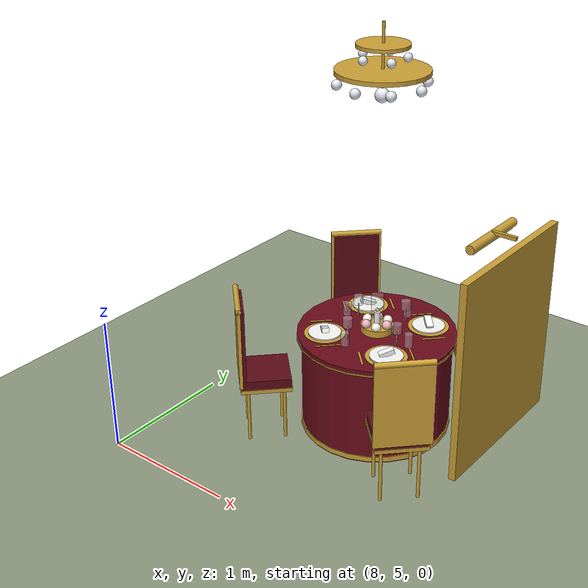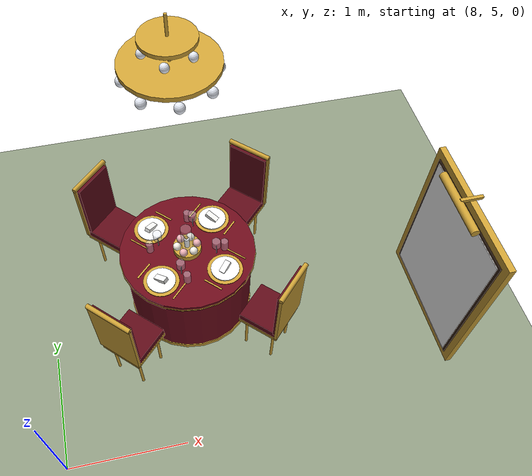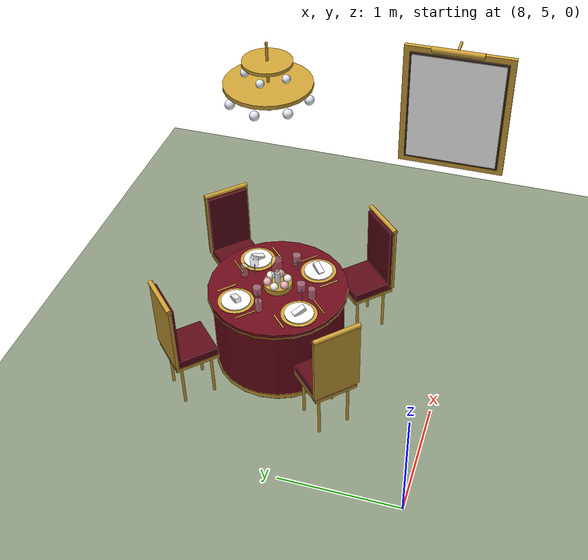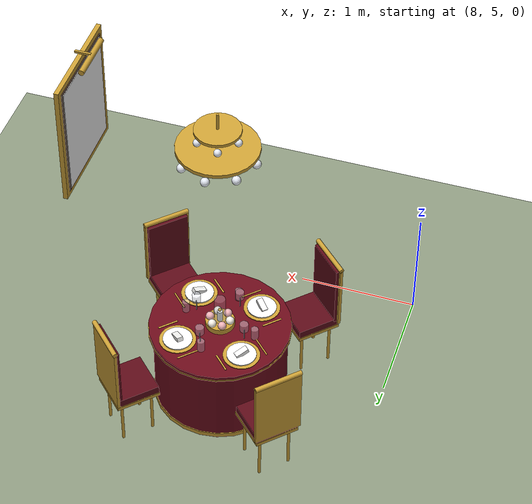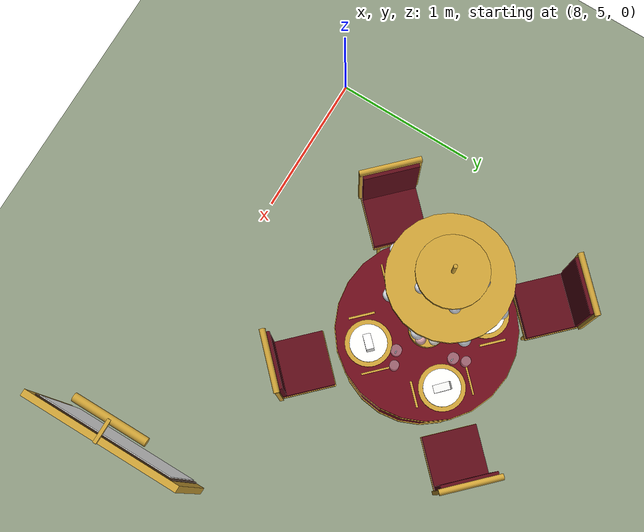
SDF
<sdf version="1.9">
 <world name="dar_tunibot">
  <model name="ground_plane">
   <static>true</static>
   <link name="link">
    <collision name="collision">
     <geometry><plane><normal>0 0 1</normal><size>60 60</size></plane></geometry>
    </collision>
    <visual name="visual">
     <geometry><plane><normal>0 0 1</normal><size>60 60</size></plane></geometry>
     <material><ambient>0.55 0.6 0.5 1</ambient><diffuse>0.55 0.6 0.5 1</diffuse></material>
    </visual>
   </link>
  </model>
  <model name="vip_1">
   <static>true</static>
   <pose>9.3 6.4 0 0 0 0</pose>
   <link name="link">
    <visual name="cloth_v">
     <pose>0.000 0.000 0.370 0.0000 0.0000 0.0000</pose>
     <geometry><cylinder><radius>0.550</radius><length>0.740</length></cylinder></geometry>
     <material>
      <ambient>0.42 0.04 0.1 1</ambient>
      <diffuse>0.42 0.04 0.1 1</diffuse>
      <specular>0.1 0.1 0.1 1</specular>
     </material>
    </visual>
    <collision name="cloth_c">
     <pose>0.000 0.000 0.370 0.0000 0.0000 0.0000</pose>
     <geometry><cylinder><radius>0.550</radius><length>0.740</length></cylinder></geometry>
    </collision>
    <visual name="drape_v">
     <pose>0.000 0.000 0.750 0.0000 0.0000 0.0000</pose>
     <geometry><cylinder><radius>0.580</radius><length>0.040</length></cylinder></geometry>
     <material>
      <ambient>0.42 0.04 0.1 1</ambient>
      <diffuse>0.42 0.04 0.1 1</diffuse>
      <specular>0.1 0.1 0.1 1</specular>
     </material>
    </visual>
    <visual name="hem_trim_v">
     <pose>0.000 0.000 0.030 0.0000 0.0000 0.0000</pose>
     <geometry><cylinder><radius>0.557</radius><length>0.040</length></cylinder></geometry>
     <material>
      <ambient>0.8 0.63 0.21 1</ambient>
      <diffuse>0.8 0.63 0.21 1</diffuse>
      <specular>0.1 0.1 0.1 1</specular>
     </material>
    </visual>
    <visual name="edge_trim_v">
     <pose>0.000 0.000 0.735 0.0000 0.0000 0.0000</pose>
     <geometry><cylinder><radius>0.585</radius><length>0.012</length></cylinder></geometry>
     <material>
      <ambient>0.8 0.63 0.21 1</ambient>
      <diffuse>0.8 0.63 0.21 1</diffuse>
      <specular>0.1 0.1 0.1 1</specular>
     </material>
    </visual>
    <visual name="bowl_v">
     <pose>0.000 0.000 0.795 0.0000 0.0000 0.0000</pose>
     <geometry><cylinder><radius>0.120</radius><length>0.050</length></cylinder></geometry>
     <material>
      <ambient>0.8 0.63 0.21 1</ambient>
      <diffuse>0.8 0.63 0.21 1</diffuse>
      <specular>0.1 0.1 0.1 1</specular>
     </material>
    </visual>
    <visual name="bowl_foot_v">
     <pose>0.000 0.000 0.775 0.0000 0.0000 0.0000</pose>
     <geometry><cylinder><radius>0.060</radius><length>0.020</length></cylinder></geometry>
     <material>
      <ambient>0.8 0.63 0.21 1</ambient>
      <diffuse>0.8 0.63 0.21 1</diffuse>
      <specular>0.1 0.1 0.1 1</specular>
     </material>
    </visual>
    <visual name="candle_v">
     <pose>0.000 0.000 0.870 0.0000 0.0000 0.0000</pose>
     <geometry><cylinder><radius>0.022</radius><length>0.100</length></cylinder></geometry>
     <material>
      <ambient>0.98 0.98 0.97 1</ambient>
      <diffuse>0.98 0.98 0.97 1</diffuse>
      <specular>0.1 0.1 0.1 1</specular>
     </material>
    </visual>
    <visual name="flame_v">
     <pose>0.000 0.000 0.935 0.0000 0.0000 0.0000</pose>
     <geometry><sphere><radius>0.014</radius></sphere></geometry>
     <material>
      <ambient>0.8 0.63 0.21 1</ambient>
      <diffuse>0.8 0.63 0.21 1</diffuse>
      <specular>0.1 0.1 0.1 1</specular>
      <emissive>1.0 0.6 0.2 1</emissive>
     </material>
    </visual>
    <visual name="hurricane_v">
     <pose>0.000 0.000 0.940 0.0000 0.0000 0.0000</pose>
     <geometry><cylinder><radius>0.045</radius><length>0.240</length></cylinder></geometry>
     <transparency>0.75</transparency>
     <material>
      <ambient>0.9 0.92 0.96 1</ambient>
      <diffuse>0.9 0.92 0.96 1</diffuse>
      <specular>0.1 0.1 0.1 1</specular>
     </material>
    </visual>
    <visual name="rose0_v">
     <pose>0.085 0.000 0.835 0.0000 0.0000 0.0000</pose>
     <geometry><sphere><radius>0.035</radius></sphere></geometry>
     <material>
      <ambient>0.93 0.7 0.72 1</ambient>
      <diffuse>0.93 0.7 0.72 1</diffuse>
      <specular>0.1 0.1 0.1 1</specular>
     </material>
    </visual>
    <visual name="rose1_v">
     <pose>0.043 0.074 0.835 0.0000 0.0000 0.0000</pose>
     <geometry><sphere><radius>0.035</radius></sphere></geometry>
     <material>
      <ambient>0.97 0.95 0.91 1</ambient>
      <diffuse>0.97 0.95 0.91 1</diffuse>
      <specular>0.1 0.1 0.1 1</specular>
     </material>
    </visual>
    <visual name="rose2_v">
     <pose>-0.042 0.074 0.835 0.0000 0.0000 0.0000</pose>
     <geometry><sphere><radius>0.035</radius></sphere></geometry>
     <material>
      <ambient>0.93 0.7 0.72 1</ambient>
      <diffuse>0.93 0.7 0.72 1</diffuse>
      <specular>0.1 0.1 0.1 1</specular>
     </material>
    </visual>
    <visual name="rose3_v">
     <pose>-0.085 0.000 0.835 0.0000 0.0000 0.0000</pose>
     <geometry><sphere><radius>0.035</radius></sphere></geometry>
     <material>
      <ambient>0.97 0.95 0.91 1</ambient>
      <diffuse>0.97 0.95 0.91 1</diffuse>
      <specular>0.1 0.1 0.1 1</specular>
     </material>
    </visual>
    <visual name="rose4_v">
     <pose>-0.043 -0.074 0.835 0.0000 0.0000 0.0000</pose>
     <geometry><sphere><radius>0.035</radius></sphere></geometry>
     <material>
      <ambient>0.93 0.7 0.72 1</ambient>
      <diffuse>0.93 0.7 0.72 1</diffuse>
      <specular>0.1 0.1 0.1 1</specular>
     </material>
    </visual>
    <visual name="rose5_v">
     <pose>0.043 -0.074 0.835 0.0000 0.0000 0.0000</pose>
     <geometry><sphere><radius>0.035</radius></sphere></geometry>
     <material>
      <ambient>0.97 0.95 0.91 1</ambient>
      <diffuse>0.97 0.95 0.91 1</diffuse>
      <specular>0.1 0.1 0.1 1</specular>
     </material>
    </visual>
    <collision name="seat0_c">
     <pose>0.580 0.580 0.225 0.0000 0.0000 0.0000</pose>
     <geometry><box><size>0.400 0.400 0.450</size></box></geometry>
    </collision>
    <visual name="seat_frame0_v">
     <pose>0.580 0.580 0.430 0.0000 0.0000 0.7854</pose>
     <geometry><box><size>0.370 0.370 0.030</size></box></geometry>
     <material>
      <ambient>0.8 0.63 0.21 1</ambient>
      <diffuse>0.8 0.63 0.21 1</diffuse>
      <specular>0.1 0.1 0.1 1</specular>
     </material>
    </visual>
    <visual name="cushion0_v">
     <pose>0.580 0.580 0.480 0.0000 0.0000 0.7854</pose>
     <geometry><box><size>0.360 0.360 0.070</size></box></geometry>
     <material>
      <ambient>0.36 0.04 0.09 1</ambient>
      <diffuse>0.36 0.04 0.09 1</diffuse>
      <specular>0.1 0.1 0.1 1</specular>
     </material>
    </visual>
    <visual name="back_frame0_v">
     <pose>0.707 0.707 0.780 0.0000 0.0000 0.7854</pose>
     <geometry><box><size>0.025 0.400 0.620</size></box></geometry>
     <material>
      <ambient>0.8 0.63 0.21 1</ambient>
      <diffuse>0.8 0.63 0.21 1</diffuse>
      <specular>0.1 0.1 0.1 1</specular>
     </material>
    </visual>
    <visual name="back0_v">
     <pose>0.697 0.697 0.780 0.0000 0.0000 0.7854</pose>
     <geometry><box><size>0.050 0.360 0.580</size></box></geometry>
     <material>
      <ambient>0.36 0.04 0.09 1</ambient>
      <diffuse>0.36 0.04 0.09 1</diffuse>
      <specular>0.1 0.1 0.1 1</specular>
     </material>
    </visual>
    <visual name="back_top0_v">
     <pose>0.707 0.707 1.090 1.5708 0.0000 0.7854</pose>
     <geometry><cylinder><radius>0.020</radius><length>0.400</length></cylinder></geometry>
     <material>
      <ambient>0.8 0.63 0.21 1</ambient>
      <diffuse>0.8 0.63 0.21 1</diffuse>
      <specular>0.1 0.1 0.1 1</specular>
     </material>
    </visual>
    <visual name="leg0_0_v">
     <pose>0.580 0.396 0.210 0.0000 0.0000 0.7854</pose>
     <geometry><cylinder><radius>0.012</radius><length>0.420</length></cylinder></geometry>
     <material>
      <ambient>0.8 0.63 0.21 1</ambient>
      <diffuse>0.8 0.63 0.21 1</diffuse>
      <specular>0.1 0.1 0.1 1</specular>
     </material>
    </visual>
    <visual name="leg0_1_v">
     <pose>0.396 0.580 0.210 0.0000 0.0000 0.7854</pose>
     <geometry><cylinder><radius>0.012</radius><length>0.420</length></cylinder></geometry>
     <material>
      <ambient>0.8 0.63 0.21 1</ambient>
      <diffuse>0.8 0.63 0.21 1</diffuse>
      <specular>0.1 0.1 0.1 1</specular>
     </material>
    </visual>
    <visual name="leg0_2_v">
     <pose>0.764 0.580 0.210 0.0000 0.0000 0.7854</pose>
     <geometry><cylinder><radius>0.012</radius><length>0.420</length></cylinder></geometry>
     <material>
      <ambient>0.8 0.63 0.21 1</ambient>
      <diffuse>0.8 0.63 0.21 1</diffuse>
      <specular>0.1 0.1 0.1 1</specular>
     </material>
    </visual>
    <visual name="leg0_3_v">
     <pose>0.580 0.764 0.210 0.0000 0.0000 0.7854</pose>
     <geometry><cylinder><radius>0.012</radius><length>0.420</length></cylinder></geometry>
     <material>
      <ambient>0.8 0.63 0.21 1</ambient>
      <diffuse>0.8 0.63 0.21 1</diffuse>
      <specular>0.1 0.1 0.1 1</specular>
     </material>
    </visual>
    <visual name="charger0_v">
     <pose>0.269 0.269 0.773 0.0000 0.0000 0.7854</pose>
     <geometry><cylinder><radius>0.150</radius><length>0.006</length></cylinder></geometry>
     <material>
      <ambient>0.8 0.63 0.21 1</ambient>
      <diffuse>0.8 0.63 0.21 1</diffuse>
      <specular>0.1 0.1 0.1 1</specular>
     </material>
    </visual>
    <visual name="plate0_v">
     <pose>0.269 0.269 0.781 0.0000 0.0000 0.7854</pose>
     <geometry><cylinder><radius>0.120</radius><length>0.010</length></cylinder></geometry>
     <material>
      <ambient>0.98 0.98 0.97 1</ambient>
      <diffuse>0.98 0.98 0.97 1</diffuse>
      <specular>0.1 0.1 0.1 1</specular>
     </material>
    </visual>
    <visual name="napkin0_v">
     <pose>0.269 0.269 0.803 0.3500 0.0000 0.7854</pose>
     <geometry><box><size>0.050 0.110 0.035</size></box></geometry>
     <material>
      <ambient>0.98 0.98 0.97 1</ambient>
      <diffuse>0.98 0.98 0.97 1</diffuse>
      <specular>0.1 0.1 0.1 1</specular>
     </material>
    </visual>
    <visual name="fork0_v">
     <pose>0.396 0.141 0.772 0.0000 0.0000 0.7854</pose>
     <geometry><box><size>0.170 0.014 0.004</size></box></geometry>
     <material>
      <ambient>0.8 0.63 0.21 1</ambient>
      <diffuse>0.8 0.63 0.21 1</diffuse>
      <specular>0.1 0.1 0.1 1</specular>
     </material>
    </visual>
    <visual name="knife0_v">
     <pose>0.141 0.396 0.772 0.0000 0.0000 0.7854</pose>
     <geometry><box><size>0.180 0.012 0.004</size></box></geometry>
     <material>
      <ambient>0.8 0.63 0.21 1</ambient>
      <diffuse>0.8 0.63 0.21 1</diffuse>
      <specular>0.1 0.1 0.1 1</specular>
     </material>
    </visual>
    <visual name="wine_stem0_v">
     <pose>0.092 0.233 0.820 0.0000 0.0000 0.7854</pose>
     <geometry><cylinder><radius>0.004</radius><length>0.100</length></cylinder></geometry>
     <material>
      <ambient>0.9 0.92 0.96 1</ambient>
      <diffuse>0.9 0.92 0.96 1</diffuse>
      <specular>0.1 0.1 0.1 1</specular>
     </material>
    </visual>
    <visual name="wine_bowl0_v">
     <pose>0.092 0.233 0.905 0.0000 0.0000 0.7854</pose>
     <geometry><cylinder><radius>0.035</radius><length>0.070</length></cylinder></geometry>
     <transparency>0.6</transparency>
     <material>
      <ambient>0.9 0.92 0.96 1</ambient>
      <diffuse>0.9 0.92 0.96 1</diffuse>
      <specular>0.1 0.1 0.1 1</specular>
     </material>
    </visual>
    <visual name="water0_v">
     <pose>0.057 0.311 0.820 0.0000 0.0000 0.7854</pose>
     <geometry><cylinder><radius>0.030</radius><length>0.100</length></cylinder></geometry>
     <transparency>0.6</transparency>
     <material>
      <ambient>0.9 0.92 0.96 1</ambient>
      <diffuse>0.9 0.92 0.96 1</diffuse>
      <specular>0.1 0.1 0.1 1</specular>
     </material>
    </visual>
    <collision name="seat1_c">
     <pose>-0.580 0.580 0.225 0.0000 0.0000 0.0000</pose>
     <geometry><box><size>0.400 0.400 0.450</size></box></geometry>
    </collision>
    <visual name="seat_frame1_v">
     <pose>-0.580 0.580 0.430 0.0000 0.0000 2.3562</pose>
     <geometry><box><size>0.370 0.370 0.030</size></box></geometry>
     <material>
      <ambient>0.8 0.63 0.21 1</ambient>
      <diffuse>0.8 0.63 0.21 1</diffuse>
      <specular>0.1 0.1 0.1 1</specular>
     </material>
    </visual>
    <visual name="cushion1_v">
     <pose>-0.580 0.580 0.480 0.0000 0.0000 2.3562</pose>
     <geometry><box><size>0.360 0.360 0.070</size></box></geometry>
     <material>
      <ambient>0.36 0.04 0.09 1</ambient>
      <diffuse>0.36 0.04 0.09 1</diffuse>
      <specular>0.1 0.1 0.1 1</specular>
     </material>
    </visual>
    <visual name="back_frame1_v">
     <pose>-0.707 0.707 0.780 0.0000 0.0000 2.3562</pose>
     <geometry><box><size>0.025 0.400 0.620</size></box></geometry>
     <material>
      <ambient>0.8 0.63 0.21 1</ambient>
      <diffuse>0.8 0.63 0.21 1</diffuse>
      <specular>0.1 0.1 0.1 1</specular>
     </material>
    </visual>
    <visual name="back1_v">
     <pose>-0.697 0.697 0.780 0.0000 0.0000 2.3562</pose>
     <geometry><box><size>0.050 0.360 0.580</size></box></geometry>
     <material>
      <ambient>0.36 0.04 0.09 1</ambient>
      <diffuse>0.36 0.04 0.09 1</diffuse>
      <specular>0.1 0.1 0.1 1</specular>
     </material>
    </visual>
    <visual name="back_top1_v">
     <pose>-0.707 0.707 1.090 1.5708 0.0000 2.3562</pose>
     <geometry><cylinder><radius>0.020</radius><length>0.400</length></cylinder></geometry>
     <material>
      <ambient>0.8 0.63 0.21 1</ambient>
      <diffuse>0.8 0.63 0.21 1</diffuse>
      <specular>0.1 0.1 0.1 1</specular>
     </material>
    </visual>
    <visual name="leg1_0_v">
     <pose>-0.396 0.580 0.210 0.0000 0.0000 2.3562</pose>
     <geometry><cylinder><radius>0.012</radius><length>0.420</length></cylinder></geometry>
     <material>
      <ambient>0.8 0.63 0.21 1</ambient>
      <diffuse>0.8 0.63 0.21 1</diffuse>
      <specular>0.1 0.1 0.1 1</specular>
     </material>
    </visual>
    <visual name="leg1_1_v">
     <pose>-0.580 0.396 0.210 0.0000 0.0000 2.3562</pose>
     <geometry><cylinder><radius>0.012</radius><length>0.420</length></cylinder></geometry>
     <material>
      <ambient>0.8 0.63 0.21 1</ambient>
      <diffuse>0.8 0.63 0.21 1</diffuse>
      <specular>0.1 0.1 0.1 1</specular>
     </material>
    </visual>
    <visual name="leg1_2_v">
     <pose>-0.580 0.764 0.210 0.0000 0.0000 2.3562</pose>
     <geometry><cylinder><radius>0.012</radius><length>0.420</length></cylinder></geometry>
     <material>
      <ambient>0.8 0.63 0.21 1</ambient>
      <diffuse>0.8 0.63 0.21 1</diffuse>
      <specular>0.1 0.1 0.1 1</specular>
     </material>
    </visual>
    <visual name="leg1_3_v">
     <pose>-0.764 0.580 0.210 0.0000 0.0000 2.3562</pose>
     <geometry><cylinder><radius>0.012</radius><length>0.420</length></cylinder></geometry>
     <material>
      <ambient>0.8 0.63 0.21 1</ambient>
      <diffuse>0.8 0.63 0.21 1</diffuse>
      <specular>0.1 0.1 0.1 1</specular>
     </material>
    </visual>
    <visual name="charger1_v">
     <pose>-0.269 0.269 0.773 0.0000 0.0000 2.3562</pose>
     <geometry><cylinder><radius>0.150</radius><length>0.006</length></cylinder></geometry>
     <material>
      <ambient>0.8 0.63 0.21 1</ambient>
      <diffuse>0.8 0.63 0.21 1</diffuse>
      <specular>0.1 0.1 0.1 1</specular>
     </material>
    </visual>
    <visual name="plate1_v">
     <pose>-0.269 0.269 0.781 0.0000 0.0000 2.3562</pose>
     <geometry><cylinder><radius>0.120</radius><length>0.010</length></cylinder></geometry>
     <material>
      <ambient>0.98 0.98 0.97 1</ambient>
      <diffuse>0.98 0.98 0.97 1</diffuse>
      <specular>0.1 0.1 0.1 1</specular>
     </material>
    </visual>
    <visual name="napkin1_v">
     <pose>-0.269 0.269 0.803 0.3500 0.0000 2.3562</pose>
     <geometry><box><size>0.050 0.110 0.035</size></box></geometry>
     <material>
      <ambient>0.98 0.98 0.97 1</ambient>
      <diffuse>0.98 0.98 0.97 1</diffuse>
      <specular>0.1 0.1 0.1 1</specular>
     </material>
    </visual>
    <visual name="fork1_v">
     <pose>-0.141 0.396 0.772 0.0000 0.0000 2.3562</pose>
     <geometry><box><size>0.170 0.014 0.004</size></box></geometry>
     <material>
      <ambient>0.8 0.63 0.21 1</ambient>
      <diffuse>0.8 0.63 0.21 1</diffuse>
      <specular>0.1 0.1 0.1 1</specular>
     </material>
    </visual>
    <visual name="knife1_v">
     <pose>-0.396 0.141 0.772 0.0000 0.0000 2.3562</pose>
     <geometry><box><size>0.180 0.012 0.004</size></box></geometry>
     <material>
      <ambient>0.8 0.63 0.21 1</ambient>
      <diffuse>0.8 0.63 0.21 1</diffuse>
      <specular>0.1 0.1 0.1 1</specular>
     </material>
    </visual>
    <visual name="wine_stem1_v">
     <pose>-0.233 0.092 0.820 0.0000 0.0000 2.3562</pose>
     <geometry><cylinder><radius>0.004</radius><length>0.100</length></cylinder></geometry>
     <material>
      <ambient>0.9 0.92 0.96 1</ambient>
      <diffuse>0.9 0.92 0.96 1</diffuse>
      <specular>0.1 0.1 0.1 1</specular>
     </material>
    </visual>
    <visual name="wine_bowl1_v">
     <pose>-0.233 0.092 0.905 0.0000 0.0000 2.3562</pose>
     <geometry><cylinder><radius>0.035</radius><length>0.070</length></cylinder></geometry>
     <transparency>0.6</transparency>
     <material>
      <ambient>0.9 0.92 0.96 1</ambient>
      <diffuse>0.9 0.92 0.96 1</diffuse>
      <specular>0.1 0.1 0.1 1</specular>
     </material>
    </visual>
    <visual name="water1_v">
     <pose>-0.311 0.057 0.820 0.0000 0.0000 2.3562</pose>
     <geometry><cylinder><radius>0.030</radius><length>0.100</length></cylinder></geometry>
     <transparency>0.6</transparency>
     <material>
      <ambient>0.9 0.92 0.96 1</ambient>
      <diffuse>0.9 0.92 0.96 1</diffuse>
      <specular>0.1 0.1 0.1 1</specular>
     </material>
    </visual>
    <collision name="seat2_c">
     <pose>-0.580 -0.580 0.225 0.0000 0.0000 0.0000</pose>
     <geometry><box><size>0.400 0.400 0.450</size></box></geometry>
    </collision>
    <visual name="seat_frame2_v">
     <pose>-0.580 -0.580 0.430 0.0000 0.0000 3.9270</pose>
     <geometry><box><size>0.370 0.370 0.030</size></box></geometry>
     <material>
      <ambient>0.8 0.63 0.21 1</ambient>
      <diffuse>0.8 0.63 0.21 1</diffuse>
      <specular>0.1 0.1 0.1 1</specular>
     </material>
    </visual>
    <visual name="cushion2_v">
     <pose>-0.580 -0.580 0.480 0.0000 0.0000 3.9270</pose>
     <geometry><box><size>0.360 0.360 0.070</size></box></geometry>
     <material>
      <ambient>0.36 0.04 0.09 1</ambient>
      <diffuse>0.36 0.04 0.09 1</diffuse>
      <specular>0.1 0.1 0.1 1</specular>
     </material>
    </visual>
    <visual name="back_frame2_v">
     <pose>-0.707 -0.707 0.780 0.0000 0.0000 3.9270</pose>
     <geometry><box><size>0.025 0.400 0.620</size></box></geometry>
     <material>
      <ambient>0.8 0.63 0.21 1</ambient>
      <diffuse>0.8 0.63 0.21 1</diffuse>
      <specular>0.1 0.1 0.1 1</specular>
     </material>
    </visual>
    <visual name="back2_v">
     <pose>-0.697 -0.697 0.780 0.0000 0.0000 3.9270</pose>
     <geometry><box><size>0.050 0.360 0.580</size></box></geometry>
     <material>
      <ambient>0.36 0.04 0.09 1</ambient>
      <diffuse>0.36 0.04 0.09 1</diffuse>
      <specular>0.1 0.1 0.1 1</specular>
     </material>
    </visual>
    <visual name="back_top2_v">
     <pose>-0.707 -0.707 1.090 1.5708 0.0000 3.9270</pose>
     <geometry><cylinder><radius>0.020</radius><length>0.400</length></cylinder></geometry>
     <material>
      <ambient>0.8 0.63 0.21 1</ambient>
      <diffuse>0.8 0.63 0.21 1</diffuse>
      <specular>0.1 0.1 0.1 1</specular>
     </material>
    </visual>
    <visual name="leg2_0_v">
     <pose>-0.580 -0.396 0.210 0.0000 0.0000 3.9270</pose>
     <geometry><cylinder><radius>0.012</radius><length>0.420</length></cylinder></geometry>
     <material>
      <ambient>0.8 0.63 0.21 1</ambient>
      <diffuse>0.8 0.63 0.21 1</diffuse>
      <specular>0.1 0.1 0.1 1</specular>
     </material>
    </visual>
    <visual name="leg2_1_v">
     <pose>-0.396 -0.580 0.210 0.0000 0.0000 3.9270</pose>
     <geometry><cylinder><radius>0.012</radius><length>0.420</length></cylinder></geometry>
     <material>
      <ambient>0.8 0.63 0.21 1</ambient>
      <diffuse>0.8 0.63 0.21 1</diffuse>
      <specular>0.1 0.1 0.1 1</specular>
     </material>
    </visual>
    <visual name="leg2_2_v">
     <pose>-0.764 -0.580 0.210 0.0000 0.0000 3.9270</pose>
     <geometry><cylinder><radius>0.012</radius><length>0.420</length></cylinder></geometry>
     <material>
      <ambient>0.8 0.63 0.21 1</ambient>
      <diffuse>0.8 0.63 0.21 1</diffuse>
      <specular>0.1 0.1 0.1 1</specular>
     </material>
    </visual>
    <visual name="leg2_3_v">
     <pose>-0.580 -0.764 0.210 0.0000 0.0000 3.9270</pose>
     <geometry><cylinder><radius>0.012</radius><length>0.420</length></cylinder></geometry>
     <material>
      <ambient>0.8 0.63 0.21 1</ambient>
      <diffuse>0.8 0.63 0.21 1</diffuse>
      <specular>0.1 0.1 0.1 1</specular>
     </material>
    </visual>
    <visual name="charger2_v">
     <pose>-0.269 -0.269 0.773 0.0000 0.0000 3.9270</pose>
     <geometry><cylinder><radius>0.150</radius><length>0.006</length></cylinder></geometry>
     <material>
      <ambient>0.8 0.63 0.21 1</ambient>
      <diffuse>0.8 0.63 0.21 1</diffuse>
      <specular>0.1 0.1 0.1 1</specular>
     </material>
    </visual>
    <visual name="plate2_v">
     <pose>-0.269 -0.269 0.781 0.0000 0.0000 3.9270</pose>
     <geometry><cylinder><radius>0.120</radius><length>0.010</length></cylinder></geometry>
     <material>
      <ambient>0.98 0.98 0.97 1</ambient>
      <diffuse>0.98 0.98 0.97 1</diffuse>
      <specular>0.1 0.1 0.1 1</specular>
     </material>
    </visual>
    <visual name="napkin2_v">
     <pose>-0.269 -0.269 0.803 0.3500 0.0000 3.9270</pose>
     <geometry><box><size>0.050 0.110 0.035</size></box></geometry>
     <material>
      <ambient>0.98 0.98 0.97 1</ambient>
      <diffuse>0.98 0.98 0.97 1</diffuse>
      <specular>0.1 0.1 0.1 1</specular>
     </material>
    </visual>
    <visual name="fork2_v">
     <pose>-0.396 -0.141 0.772 0.0000 0.0000 3.9270</pose>
     <geometry><box><size>0.170 0.014 0.004</size></box></geometry>
     <material>
      <ambient>0.8 0.63 0.21 1</ambient>
      <diffuse>0.8 0.63 0.21 1</diffuse>
      <specular>0.1 0.1 0.1 1</specular>
     </material>
    </visual>
    <visual name="knife2_v">
     <pose>-0.141 -0.396 0.772 0.0000 0.0000 3.9270</pose>
     <geometry><box><size>0.180 0.012 0.004</size></box></geometry>
     <material>
      <ambient>0.8 0.63 0.21 1</ambient>
      <diffuse>0.8 0.63 0.21 1</diffuse>
      <specular>0.1 0.1 0.1 1</specular>
     </material>
    </visual>
    <visual name="wine_stem2_v">
     <pose>-0.092 -0.233 0.820 0.0000 0.0000 3.9270</pose>
     <geometry><cylinder><radius>0.004</radius><length>0.100</length></cylinder></geometry>
     <material>
      <ambient>0.9 0.92 0.96 1</ambient>
      <diffuse>0.9 0.92 0.96 1</diffuse>
      <specular>0.1 0.1 0.1 1</specular>
     </material>
    </visual>
    <visual name="wine_bowl2_v">
     <pose>-0.092 -0.233 0.905 0.0000 0.0000 3.9270</pose>
     <geometry><cylinder><radius>0.035</radius><length>0.070</length></cylinder></geometry>
     <transparency>0.6</transparency>
     <material>
      <ambient>0.9 0.92 0.96 1</ambient>
      <diffuse>0.9 0.92 0.96 1</diffuse>
      <specular>0.1 0.1 0.1 1</specular>
     </material>
    </visual>
    <visual name="water2_v">
     <pose>-0.057 -0.311 0.820 0.0000 0.0000 3.9270</pose>
     <geometry><cylinder><radius>0.030</radius><length>0.100</length></cylinder></geometry>
     <transparency>0.6</transparency>
     <material>
      <ambient>0.9 0.92 0.96 1</ambient>
      <diffuse>0.9 0.92 0.96 1</diffuse>
      <specular>0.1 0.1 0.1 1</specular>
     </material>
    </visual>
    <collision name="seat3_c">
     <pose>0.580 -0.580 0.225 0.0000 0.0000 0.0000</pose>
     <geometry><box><size>0.400 0.400 0.450</size></box></geometry>
    </collision>
    <visual name="seat_frame3_v">
     <pose>0.580 -0.580 0.430 0.0000 0.0000 5.4978</pose>
     <geometry><box><size>0.370 0.370 0.030</size></box></geometry>
     <material>
      <ambient>0.8 0.63 0.21 1</ambient>
      <diffuse>0.8 0.63 0.21 1</diffuse>
      <specular>0.1 0.1 0.1 1</specular>
     </material>
    </visual>
    <visual name="cushion3_v">
     <pose>0.580 -0.580 0.480 0.0000 0.0000 5.4978</pose>
     <geometry><box><size>0.360 0.360 0.070</size></box></geometry>
     <material>
      <ambient>0.36 0.04 0.09 1</ambient>
      <diffuse>0.36 0.04 0.09 1</diffuse>
      <specular>0.1 0.1 0.1 1</specular>
     </material>
    </visual>
    <visual name="back_frame3_v">
     <pose>0.707 -0.707 0.780 0.0000 0.0000 5.4978</pose>
     <geometry><box><size>0.025 0.400 0.620</size></box></geometry>
     <material>
      <ambient>0.8 0.63 0.21 1</ambient>
      <diffuse>0.8 0.63 0.21 1</diffuse>
      <specular>0.1 0.1 0.1 1</specular>
     </material>
    </visual>
    <visual name="back3_v">
     <pose>0.697 -0.697 0.780 0.0000 0.0000 5.4978</pose>
     <geometry><box><size>0.050 0.360 0.580</size></box></geometry>
     <material>
      <ambient>0.36 0.04 0.09 1</ambient>
      <diffuse>0.36 0.04 0.09 1</diffuse>
      <specular>0.1 0.1 0.1 1</specular>
     </material>
    </visual>
    <visual name="back_top3_v">
     <pose>0.707 -0.707 1.090 1.5708 0.0000 5.4978</pose>
     <geometry><cylinder><radius>0.020</radius><length>0.400</length></cylinder></geometry>
     <material>
      <ambient>0.8 0.63 0.21 1</ambient>
      <diffuse>0.8 0.63 0.21 1</diffuse>
      <specular>0.1 0.1 0.1 1</specular>
     </material>
    </visual>
    <visual name="leg3_0_v">
     <pose>0.396 -0.580 0.210 0.0000 0.0000 5.4978</pose>
     <geometry><cylinder><radius>0.012</radius><length>0.420</length></cylinder></geometry>
     <material>
      <ambient>0.8 0.63 0.21 1</ambient>
      <diffuse>0.8 0.63 0.21 1</diffuse>
      <specular>0.1 0.1 0.1 1</specular>
     </material>
    </visual>
    <visual name="leg3_1_v">
     <pose>0.580 -0.396 0.210 0.0000 0.0000 5.4978</pose>
     <geometry><cylinder><radius>0.012</radius><length>0.420</length></cylinder></geometry>
     <material>
      <ambient>0.8 0.63 0.21 1</ambient>
      <diffuse>0.8 0.63 0.21 1</diffuse>
      <specular>0.1 0.1 0.1 1</specular>
     </material>
    </visual>
    <visual name="leg3_2_v">
     <pose>0.580 -0.764 0.210 0.0000 0.0000 5.4978</pose>
     <geometry><cylinder><radius>0.012</radius><length>0.420</length></cylinder></geometry>
     <material>
      <ambient>0.8 0.63 0.21 1</ambient>
      <diffuse>0.8 0.63 0.21 1</diffuse>
      <specular>0.1 0.1 0.1 1</specular>
     </material>
    </visual>
    <visual name="leg3_3_v">
     <pose>0.764 -0.580 0.210 0.0000 0.0000 5.4978</pose>
     <geometry><cylinder><radius>0.012</radius><length>0.420</length></cylinder></geometry>
     <material>
      <ambient>0.8 0.63 0.21 1</ambient>
      <diffuse>0.8 0.63 0.21 1</diffuse>
      <specular>0.1 0.1 0.1 1</specular>
     </material>
    </visual>
    <visual name="charger3_v">
     <pose>0.269 -0.269 0.773 0.0000 0.0000 5.4978</pose>
     <geometry><cylinder><radius>0.150</radius><length>0.006</length></cylinder></geometry>
     <material>
      <ambient>0.8 0.63 0.21 1</ambient>
      <diffuse>0.8 0.63 0.21 1</diffuse>
      <specular>0.1 0.1 0.1 1</specular>
     </material>
    </visual>
    <visual name="plate3_v">
     <pose>0.269 -0.269 0.781 0.0000 0.0000 5.4978</pose>
     <geometry><cylinder><radius>0.120</radius><length>0.010</length></cylinder></geometry>
     <material>
      <ambient>0.98 0.98 0.97 1</ambient>
      <diffuse>0.98 0.98 0.97 1</diffuse>
      <specular>0.1 0.1 0.1 1</specular>
     </material>
    </visual>
    <visual name="napkin3_v">
     <pose>0.269 -0.269 0.803 0.3500 0.0000 5.4978</pose>
     <geometry><box><size>0.050 0.110 0.035</size></box></geometry>
     <material>
      <ambient>0.98 0.98 0.97 1</ambient>
      <diffuse>0.98 0.98 0.97 1</diffuse>
      <specular>0.1 0.1 0.1 1</specular>
     </material>
    </visual>
    <visual name="fork3_v">
     <pose>0.141 -0.396 0.772 0.0000 0.0000 5.4978</pose>
     <geometry><box><size>0.170 0.014 0.004</size></box></geometry>
     <material>
      <ambient>0.8 0.63 0.21 1</ambient>
      <diffuse>0.8 0.63 0.21 1</diffuse>
      <specular>0.1 0.1 0.1 1</specular>
     </material>
    </visual>
    <visual name="knife3_v">
     <pose>0.396 -0.141 0.772 0.0000 0.0000 5.4978</pose>
     <geometry><box><size>0.180 0.012 0.004</size></box></geometry>
     <material>
      <ambient>0.8 0.63 0.21 1</ambient>
      <diffuse>0.8 0.63 0.21 1</diffuse>
      <specular>0.1 0.1 0.1 1</specular>
     </material>
    </visual>
    <visual name="wine_stem3_v">
     <pose>0.233 -0.092 0.820 0.0000 0.0000 5.4978</pose>
     <geometry><cylinder><radius>0.004</radius><length>0.100</length></cylinder></geometry>
     <material>
      <ambient>0.9 0.92 0.96 1</ambient>
      <diffuse>0.9 0.92 0.96 1</diffuse>
      <specular>0.1 0.1 0.1 1</specular>
     </material>
    </visual>
    <visual name="wine_bowl3_v">
     <pose>0.233 -0.092 0.905 0.0000 0.0000 5.4978</pose>
     <geometry><cylinder><radius>0.035</radius><length>0.070</length></cylinder></geometry>
     <transparency>0.6</transparency>
     <material>
      <ambient>0.9 0.92 0.96 1</ambient>
      <diffuse>0.9 0.92 0.96 1</diffuse>
      <specular>0.1 0.1 0.1 1</specular>
     </material>
    </visual>
    <visual name="water3_v">
     <pose>0.311 -0.057 0.820 0.0000 0.0000 5.4978</pose>
     <geometry><cylinder><radius>0.030</radius><length>0.100</length></cylinder></geometry>
     <transparency>0.6</transparency>
     <material>
      <ambient>0.9 0.92 0.96 1</ambient>
      <diffuse>0.9 0.92 0.96 1</diffuse>
      <specular>0.1 0.1 0.1 1</specular>
     </material>
    </visual>
    <visual name="chand_rod_v">
     <pose>0.000 0.000 2.750 0.0000 0.0000 0.0000</pose>
     <geometry><cylinder><radius>0.010</radius><length>0.500</length></cylinder></geometry>
     <material>
      <ambient>0.8 0.63 0.21 1</ambient>
      <diffuse>0.8 0.63 0.21 1</diffuse>
      <specular>0.1 0.1 0.1 1</specular>
     </material>
    </visual>
    <visual name="chand_ring_v">
     <pose>0.000 0.000 2.680 0.0000 0.0000 0.0000</pose>
     <geometry><cylinder><radius>0.320</radius><length>0.030</length></cylinder></geometry>
     <material>
      <ambient>0.8 0.63 0.21 1</ambient>
      <diffuse>0.8 0.63 0.21 1</diffuse>
      <specular>0.1 0.1 0.1 1</specular>
     </material>
    </visual>
    <visual name="chand_ring_top_v">
     <pose>0.000 0.000 2.850 0.0000 0.0000 0.0000</pose>
     <geometry><cylinder><radius>0.180</radius><length>0.025</length></cylinder></geometry>
     <material>
      <ambient>0.8 0.63 0.21 1</ambient>
      <diffuse>0.8 0.63 0.21 1</diffuse>
      <specular>0.1 0.1 0.1 1</specular>
     </material>
    </visual>
    <visual name="chand_drop_v">
     <pose>0.000 0.000 2.520 0.0000 0.0000 0.0000</pose>
     <geometry><sphere><radius>0.050</radius></sphere></geometry>
     <material>
      <ambient>0.9 0.92 0.96 1</ambient>
      <diffuse>0.9 0.92 0.96 1</diffuse>
      <specular>0.1 0.1 0.1 1</specular>
      <emissive>0.55 0.52 0.45 1</emissive>
     </material>
    </visual>
    <visual name="crystal0_0_v">
     <pose>0.300 0.000 2.600 0.0000 0.0000 0.0000</pose>
     <geometry><sphere><radius>0.035</radius></sphere></geometry>
     <material>
      <ambient>0.9 0.92 0.96 1</ambient>
      <diffuse>0.9 0.92 0.96 1</diffuse>
      <specular>0.1 0.1 0.1 1</specular>
      <emissive>0.55 0.52 0.45 1</emissive>
     </material>
    </visual>
    <visual name="crystal0_1_v">
     <pose>0.212 0.212 2.600 0.0000 0.0000 0.0000</pose>
     <geometry><sphere><radius>0.035</radius></sphere></geometry>
     <material>
      <ambient>0.9 0.92 0.96 1</ambient>
      <diffuse>0.9 0.92 0.96 1</diffuse>
      <specular>0.1 0.1 0.1 1</specular>
      <emissive>0.55 0.52 0.45 1</emissive>
     </material>
    </visual>
    <visual name="crystal0_2_v">
     <pose>0.000 0.300 2.600 0.0000 0.0000 0.0000</pose>
     <geometry><sphere><radius>0.035</radius></sphere></geometry>
     <material>
      <ambient>0.9 0.92 0.96 1</ambient>
      <diffuse>0.9 0.92 0.96 1</diffuse>
      <specular>0.1 0.1 0.1 1</specular>
      <emissive>0.55 0.52 0.45 1</emissive>
     </material>
    </visual>
    <visual name="crystal0_3_v">
     <pose>-0.212 0.212 2.600 0.0000 0.0000 0.0000</pose>
     <geometry><sphere><radius>0.035</radius></sphere></geometry>
     <material>
      <ambient>0.9 0.92 0.96 1</ambient>
      <diffuse>0.9 0.92 0.96 1</diffuse>
      <specular>0.1 0.1 0.1 1</specular>
      <emissive>0.55 0.52 0.45 1</emissive>
     </material>
    </visual>
    <visual name="crystal0_4_v">
     <pose>-0.300 0.000 2.600 0.0000 0.0000 0.0000</pose>
     <geometry><sphere><radius>0.035</radius></sphere></geometry>
     <material>
      <ambient>0.9 0.92 0.96 1</ambient>
      <diffuse>0.9 0.92 0.96 1</diffuse>
      <specular>0.1 0.1 0.1 1</specular>
      <emissive>0.55 0.52 0.45 1</emissive>
     </material>
    </visual>
    <visual name="crystal0_5_v">
     <pose>-0.212 -0.212 2.600 0.0000 0.0000 0.0000</pose>
     <geometry><sphere><radius>0.035</radius></sphere></geometry>
     <material>
      <ambient>0.9 0.92 0.96 1</ambient>
      <diffuse>0.9 0.92 0.96 1</diffuse>
      <specular>0.1 0.1 0.1 1</specular>
      <emissive>0.55 0.52 0.45 1</emissive>
     </material>
    </visual>
    <visual name="crystal0_6_v">
     <pose>-0.000 -0.300 2.600 0.0000 0.0000 0.0000</pose>
     <geometry><sphere><radius>0.035</radius></sphere></geometry>
     <material>
      <ambient>0.9 0.92 0.96 1</ambient>
      <diffuse>0.9 0.92 0.96 1</diffuse>
      <specular>0.1 0.1 0.1 1</specular>
      <emissive>0.55 0.52 0.45 1</emissive>
     </material>
    </visual>
    <visual name="crystal0_7_v">
     <pose>0.212 -0.212 2.600 0.0000 0.0000 0.0000</pose>
     <geometry><sphere><radius>0.035</radius></sphere></geometry>
     <material>
      <ambient>0.9 0.92 0.96 1</ambient>
      <diffuse>0.9 0.92 0.96 1</diffuse>
      <specular>0.1 0.1 0.1 1</specular>
      <emissive>0.55 0.52 0.45 1</emissive>
     </material>
    </visual>
    <visual name="crystal1_0_v">
     <pose>0.129 0.094 2.770 0.0000 0.0000 0.0000</pose>
     <geometry><sphere><radius>0.030</radius></sphere></geometry>
     <material>
      <ambient>0.9 0.92 0.96 1</ambient>
      <diffuse>0.9 0.92 0.96 1</diffuse>
      <specular>0.1 0.1 0.1 1</specular>
      <emissive>0.55 0.52 0.45 1</emissive>
     </material>
    </visual>
    <visual name="crystal1_1_v">
     <pose>-0.049 0.152 2.770 0.0000 0.0000 0.0000</pose>
     <geometry><sphere><radius>0.030</radius></sphere></geometry>
     <material>
      <ambient>0.9 0.92 0.96 1</ambient>
      <diffuse>0.9 0.92 0.96 1</diffuse>
      <specular>0.1 0.1 0.1 1</specular>
      <emissive>0.55 0.52 0.45 1</emissive>
     </material>
    </visual>
    <visual name="crystal1_2_v">
     <pose>-0.160 0.000 2.770 0.0000 0.0000 0.0000</pose>
     <geometry><sphere><radius>0.030</radius></sphere></geometry>
     <material>
      <ambient>0.9 0.92 0.96 1</ambient>
      <diffuse>0.9 0.92 0.96 1</diffuse>
      <specular>0.1 0.1 0.1 1</specular>
      <emissive>0.55 0.52 0.45 1</emissive>
     </material>
    </visual>
    <visual name="crystal1_3_v">
     <pose>-0.049 -0.152 2.770 0.0000 0.0000 0.0000</pose>
     <geometry><sphere><radius>0.030</radius></sphere></geometry>
     <material>
      <ambient>0.9 0.92 0.96 1</ambient>
      <diffuse>0.9 0.92 0.96 1</diffuse>
      <specular>0.1 0.1 0.1 1</specular>
      <emissive>0.55 0.52 0.45 1</emissive>
     </material>
    </visual>
    <visual name="crystal1_4_v">
     <pose>0.129 -0.094 2.770 0.0000 0.0000 0.0000</pose>
     <geometry><sphere><radius>0.030</radius></sphere></geometry>
     <material>
      <ambient>0.9 0.92 0.96 1</ambient>
      <diffuse>0.9 0.92 0.96 1</diffuse>
      <specular>0.1 0.1 0.1 1</specular>
      <emissive>0.55 0.52 0.45 1</emissive>
     </material>
    </visual>
   </link>
  </model>
  <model name="art_salon_east">
   <static>true</static>
   <pose>10.9 5.3 0 0 0 3.141592653589793</pose>
   <link name="link">
    <visual name="frame_v">
     <pose>0.030 0.000 1.700 0.0000 0.0000 0.0000</pose>
     <geometry><box><size>0.040 0.940 1.140</size></box></geometry>
     <material>
      <ambient>0.8 0.63 0.21 1</ambient>
      <diffuse>0.8 0.63 0.21 1</diffuse>
      <specular>0.1 0.1 0.1 1</specular>
     </material>
    </visual>
    <visual name="liner_v">
     <pose>0.052 0.000 1.700 0.0000 0.0000 0.0000</pose>
     <geometry><box><size>0.010 0.840 1.040</size></box></geometry>
     <material>
      <ambient>0.2 0.12 0.07 1</ambient>
      <diffuse>0.2 0.12 0.07 1</diffuse>
      <specular>0.1 0.1 0.1 1</specular>
     </material>
    </visual>
    <visual name="canvas_v">
     <pose>0.057 0.000 1.700 0.0000 0.0000 0.0000</pose>
     <geometry><box><size>0.010 0.800 1.000</size></box></geometry>
     <material>
      <ambient>1 1 1 1</ambient>
      <diffuse>1 1 1 1</diffuse>
      <specular>0.05 0.05 0.05 1</specular>
      <pbr>
       <metal>
        <albedo_map>model://dar_art/materials/textures/roses_still_life.png</albedo_map>
        <roughness>0.9</roughness>
        <metalness>0.0</metalness>
       </metal>
      </pbr>
     </material>
    </visual>
    <visual name="lamp_arm_v">
     <pose>0.080 0.000 2.340 0.0000 0.0000 0.0000</pose>
     <geometry><box><size>0.140 0.020 0.020</size></box></geometry>
     <material>
      <ambient>0.8 0.63 0.21 1</ambient>
      <diffuse>0.8 0.63 0.21 1</diffuse>
      <specular>0.1 0.1 0.1 1</specular>
     </material>
    </visual>
    <visual name="lamp_v">
     <pose>0.150 0.000 2.320 1.5708 0.0000 0.0000</pose>
     <geometry><cylinder><radius>0.025</radius><length>0.440</length></cylinder></geometry>
     <material>
      <ambient>0.8 0.63 0.21 1</ambient>
      <diffuse>0.8 0.63 0.21 1</diffuse>
      <specular>0.1 0.1 0.1 1</specular>
     </material>
    </visual>
    <visual name="lamp_glow_v">
     <pose>0.150 0.000 2.295 0.0000 0.0000 0.0000</pose>
     <geometry><box><size>0.020 0.400 0.010</size></box></geometry>
     <material>
      <ambient>1.0 0.85 0.6 1</ambient>
      <diffuse>1.0 0.85 0.6 1</diffuse>
      <specular>0.1 0.1 0.1 1</specular>
      <emissive>1.0 0.8 0.5 1</emissive>
     </material>
    </visual>
   </link>
  </model>
 </world>
</sdf>
